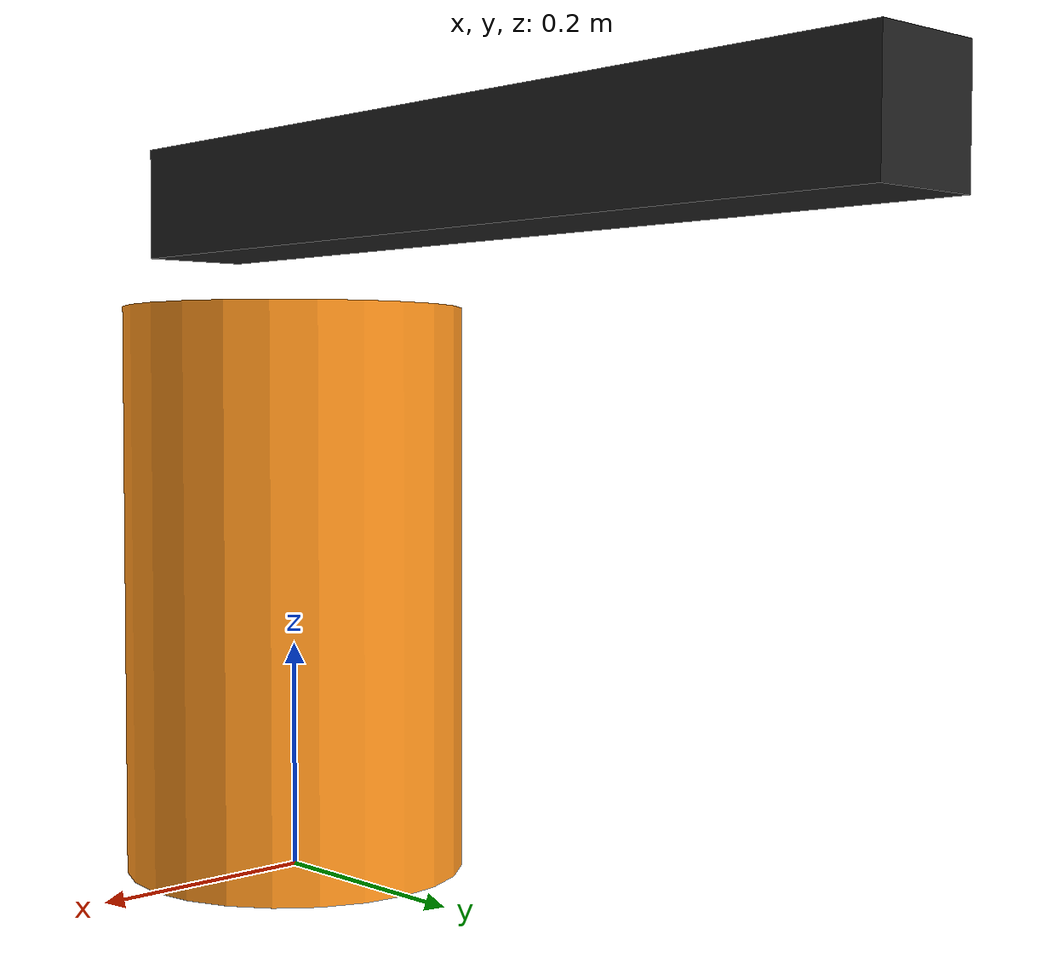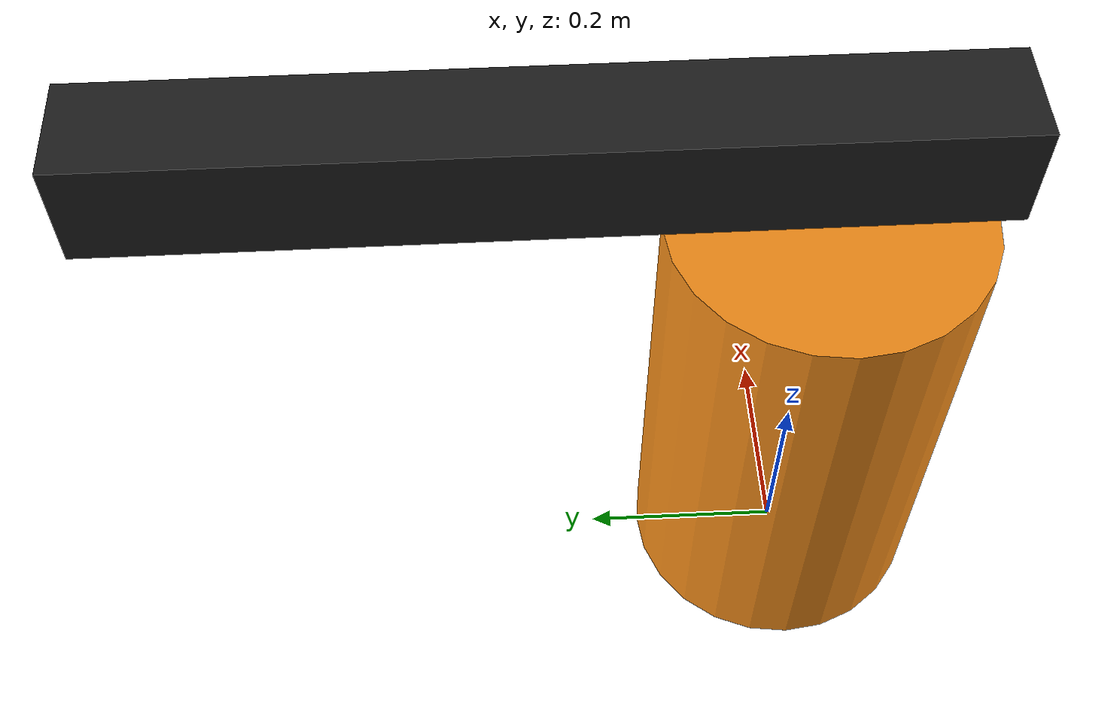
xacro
<?xml version="1.0"?>
<!-- just one degree of freedom to test ros_control with gazebo and arduino + dynamixel motor -->
<robot name="onedof" xmlns:xacro="http://www.ros.org/wiki/xacro">

  <!-- Constants for robot dimensions -->
  <xacro:property name="PI" value="3.1415926535897931"/>
  <xacro:property name="mass" value="1" /> <!-- arbitrary value for mass -->
  <xacro:property name="width" value="0.1" /> <!-- Square dimensions (widthxwidth) of beams -->
  <xacro:property name="height1" value="0.50" /> <!-- Link 1 -->
  <xacro:property name="height2" value="0.50" /> <!-- Link 1 -->
  <xacro:property name="radius1" value="0.15" /> <!-- Link 2 -->
  <xacro:property name="length_arm" value="0.80" /> <!-- Link 3 -->
  <xacro:property name="camera_link" value="0.05" /> <!-- Size of square 'camera' box -->
  <xacro:property name="axel_offset" value="0.1" /> <!-- Space btw top of beam and the each joint -->

  <!-- Import all Gazebo-customization elements, including Gazebo colors -->
  <xacro:include filename="$(find onedof_description)/urdf/onedof.gazebo" />
  <!-- Import Rviz colors -->
  <xacro:include filename="$(find onedof_description)/urdf/materials.xacro" />

  <!-- Used for fixing robot to Gazebo 'base_link' -->
  <link name="world"/>

  <joint name="fixed" type="fixed">
    <parent link="world"/>
    <child link="base_link"/>
    <origin xyz="0 0 ${height1/2}"/>
  </joint>

  <!-- Base Link -->
  <link name="base_link">
    <collision>
      <origin xyz="0 0 0" rpy="0 0 0"/>
      <geometry>
        <cylinder length = "${height1}" radius="${radius1}" />
      </geometry>
    </collision>

    <visual>
      <origin xyz="0 0 0" rpy="0 0 0"/>
      <geometry>
        <cylinder length = "${height1}" radius="${radius1}" />
      </geometry>
      <material name="orange"/>
    </visual>

    <inertial>
      <origin xyz="0 0 0" rpy="0 0 0"/>
      <mass value="${mass}"/>
      <inertia
        ixx = "${mass / 12.0 * (3*radius1*radius1 + height1*height1)}" ixy="0.0" ixz="0.0"
        iyy = "${mass / 12.0 * (3*radius1*radius1 + height1*height1)}" iyz="0.0"
        izz="${mass / 2.0 * radius1*radius1}"/>
    </inertial>

  </link>

  <joint name="joint1" type="continuous">
    <parent link="base_link"/>
    <child link="link2"/>
    <origin xyz="0 0 ${height1/2+axel_offset}" rpy="0 0 0"/>
    <axis xyz="0 0 1"/>
    <dynamics damping="0.0"/>
    <dynamics friction="0.3"/>
  </joint>

  <!-- arm Link -->
  <link name="link2">
    <collision>
      <origin xyz="0 ${length_arm/2-radius1} 0" rpy="0 0 0"/>
      <geometry>
      	<box size="${width} ${length_arm} ${width}"/>
      </geometry>
    </collision>

    <visual>
      <origin xyz="0 ${length_arm/2-radius1} 0" rpy="0 0 0"/>
      <geometry>
	      <box size="${width} ${length_arm} ${width}"/>
      </geometry>
      <material name="black"/>
    </visual>

    <inertial>
      <origin xyz="0 0 ${height2/2 - axel_offset}" rpy="0 0 0"/>
      <mass value="${mass}"/>
      <inertia
        ixx="${mass / 12.0 * (width*width + width*width)}" ixy="0.0" ixz="0.0"
        iyy="${mass / 12.0 * (length_arm*length_arm + width*width)}" iyz="0.0"
        izz="${mass / 12.0 * (length_arm*length_arm + width*width)}"/>
    </inertial>

  </link>

  <!-- Gazebo element to include the actuator -->
  <transmission name="tran1">
    <type>transmission_interface/SimpleTransmission</type>
    <joint name="joint1">
      <hardwareInterface>hardware_interface/EffortJointInterface</hardwareInterface>
    </joint>
    <actuator name="motor1">
      <hardwareInterface>hardware_interface/EffortJointInterface</hardwareInterface>
      <mechanicalReduction>1</mechanicalReduction>
    </actuator>
  </transmission>

</robot>
